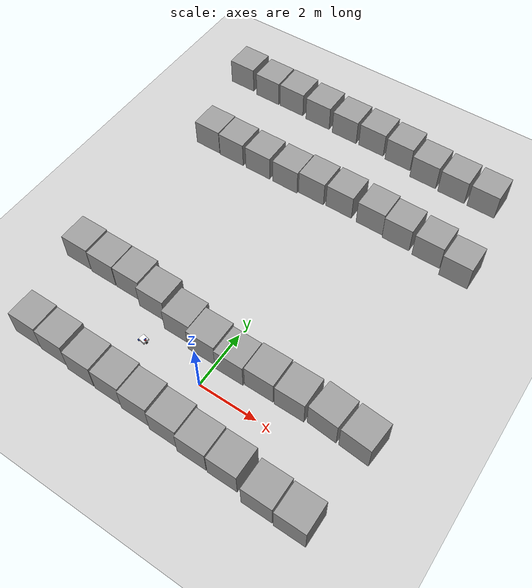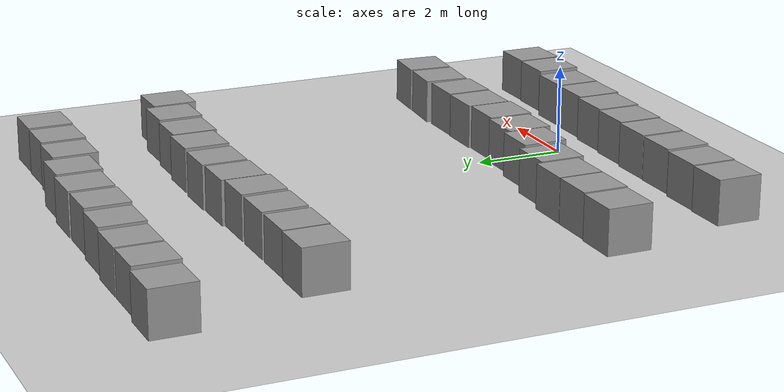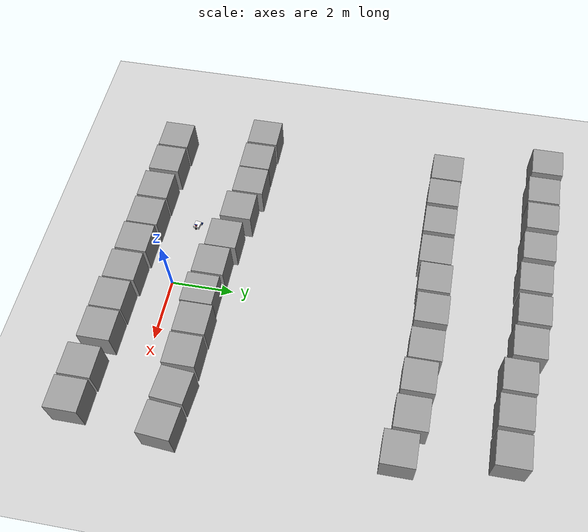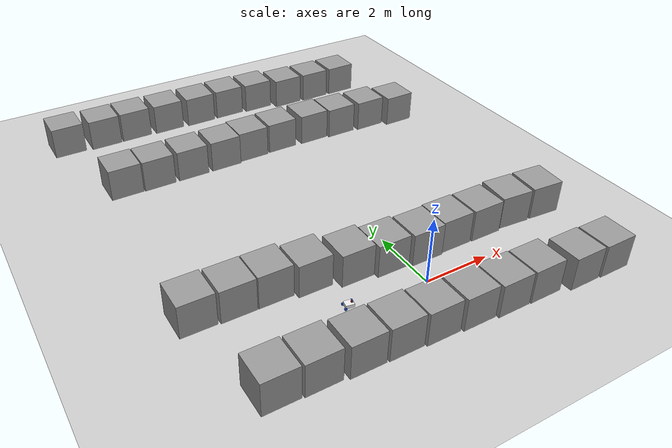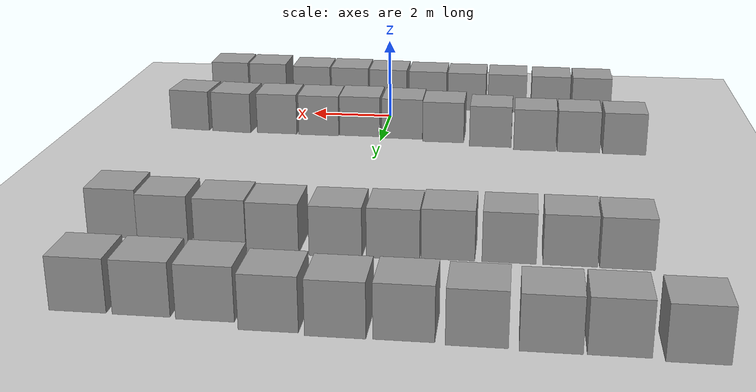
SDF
<sdf version="1.7">
 <world name="default">
  <model name="ground_plane">
   <static>1</static>
   <link name="link">
    <collision name="collision">
     <geometry><plane><normal>0 0 1</normal><size>100 100</size></plane></geometry>
     <surface><friction><ode><mu>100</mu><mu2>50</mu2></ode></friction></surface>
    </collision>
    <visual name="visual">
     <cast_shadows>0</cast_shadows>
     <geometry><plane><normal>0 0 1</normal><size>100 100</size></plane></geometry>
     <material>
      <script><uri>file://media/materials/scripts/gazebo.material</uri><name>Gazebo/Grey</name></script>
     </material>
    </visual>
   </link>
  </model>
  <model name="my_bot">
   <link name="base_link">
    <inertial>
     <pose>0.177215 0 0.060506 0 -0 0</pose>
     <mass>0.79</mass>
     <inertia>
      <ixx>0.00271819</ixx>
      <ixy>0</ixy>
      <ixz>0.000910886</ixz>
      <iyy>0.0116814</iyy>
      <iyz>0</iyz>
      <izz>0.011264</izz>
     </inertia>
    </inertial>
    <collision name="base_link_fixed_joint_lump__chassis_collision">
     <pose>0.12 0 0.05 0 -0 0</pose>
     <geometry><box><size>0.24 0.16 0.1</size></box></geometry>
    </collision>
    <collision name="base_link_fixed_joint_lump__caster_wheel_collision_1">
     <pose>0.24 0 0 0 -0 0</pose>
     <geometry><sphere><radius>0.04</radius></sphere></geometry>
     <surface><friction><ode><mu>0.001</mu><mu2>0.001</mu2></ode></friction></surface>
    </collision>
    <collision name="base_link_fixed_joint_lump__laser_frame_collision_2">
     <pose>0.2 0 0.12 0 -0 0</pose>
     <geometry><cylinder><length>0.04</length><radius>0.033</radius></cylinder></geometry>
    </collision>
    <visual name="base_link_fixed_joint_lump__chassis_visual">
     <pose>0.12 0 0.05 0 -0 0</pose>
     <geometry><box><size>0.24 0.2 0.1</size></box></geometry>
     <material>
      <script><name>Gazebo/White</name><uri>file://media/materials/scripts/gazebo.material</uri></script>
     </material>
    </visual>
    <visual name="base_link_fixed_joint_lump__camera_link_visual_1">
     <pose>0.2 0 0.16 0 -0 0</pose>
     <geometry><box><size>0.025 0.09 0.02</size></box></geometry>
     <material>
      <script><name>Gazebo/Blue</name><uri>file://media/materials/scripts/gazebo.material</uri></script>
     </material>
    </visual>
    <visual name="base_link_fixed_joint_lump__caster_wheel_visual_2">
     <pose>0.24 0 0 0 -0 0</pose>
     <geometry><sphere><radius>0.04</radius></sphere></geometry>
     <material>
      <script><name>Gazebo/Black</name><uri>file://media/materials/scripts/gazebo.material</uri></script>
     </material>
    </visual>
    <visual name="base_link_fixed_joint_lump__laser_frame_visual_3">
     <pose>0.2 0 0.12 0 -0 0</pose>
     <geometry><cylinder><length>0.04</length><radius>0.033</radius></cylinder></geometry>
     <material>
      <script><name>Gazebo/Red</name><uri>file://media/materials/scripts/gazebo.material</uri></script>
     </material>
    </visual>
    <sensor name="camera" type="depth">
     <visualize>1</visualize>
     <update_rate>10</update_rate>
     <camera>
      <horizontal_fov>1.089</horizontal_fov>
      <image><format>B8G8R8</format><width>640</width><height>480</height></image>
      <clip><near>0.05</near><far>8</far></clip>
     </camera>
     <plugin name="camera_controller" filename="libgazebo_ros_camera.so">
      <frame_name>camera_link_optical</frame_name>
      <min_depth>0.1</min_depth>
      <max_depth>100.0</max_depth>
     </plugin>
     <pose>0.2 0 0.16 0 -0 0</pose>
    </sensor>
    <sensor name="laser" type="ray">
     <visualize>1</visualize>
     <update_rate>10</update_rate>
     <ray>
      <scan>
       <horizontal>
        <samples>360</samples>
        <min_angle>-3.14</min_angle>
        <max_angle>3.14</max_angle>
        <resolution>1</resolution>
       </horizontal>
       <vertical><samples>1</samples><min_angle>0</min_angle><max_angle>0</max_angle></vertical>
      </scan>
      <range><min>0.3</min><max>12</max></range>
     </ray>
     <plugin name="laser_controller" filename="libgazebo_ros_ray_sensor.so">
      <ros><argument>~/out:=scan</argument></ros>
      <output_type>sensor_msgs/LaserScan</output_type>
      <frame_name>laser_frame</frame_name>
     </plugin>
     <pose>0.2 0 0.12 0 -0 0</pose>
    </sensor>
   </link>
   <joint name="left_wheel_joint" type="revolute">
    <pose relative_to="base_link">0 0.1 0 -1.5708 0 0</pose>
    <parent>base_link</parent>
    <child>left_wheel</child>
    <axis>
     <xyz>0 0 1</xyz>
     <limit><lower>-1e+16</lower><upper>1e+16</upper></limit>
     <dynamics><spring_reference>0</spring_reference><spring_stiffness>0</spring_stiffness></dynamics>
    </axis>
   </joint>
   <link name="left_wheel">
    <pose relative_to="left_wheel_joint">0 0 0 0 -0 0</pose>
    <inertial>
     <mass>0.1</mass>
     <inertia>
      <ixx>5.33333e-05</ixx>
      <ixy>0</ixy>
      <ixz>0</ixz>
      <iyy>5.33333e-05</iyy>
      <iyz>0</iyz>
      <izz>8e-05</izz>
     </inertia>
    </inertial>
    <collision name="left_wheel_collision"><geometry><sphere><radius>0.04</radius></sphere></geometry></collision>
    <visual name="left_wheel_visual">
     <geometry><cylinder><length>0.04</length><radius>0.04</radius></cylinder></geometry>
     <material>
      <script><name>Gazebo/Blue</name><uri>file://media/materials/scripts/gazebo.material</uri></script>
     </material>
    </visual>
   </link>
   <joint name="right_wheel_joint" type="revolute">
    <pose relative_to="base_link">0 -0.1 0 1.5708 -0 0</pose>
    <parent>base_link</parent>
    <child>right_wheel</child>
    <axis>
     <xyz>0 0 -1</xyz>
     <limit><lower>-1e+16</lower><upper>1e+16</upper></limit>
     <dynamics><spring_reference>0</spring_reference><spring_stiffness>0</spring_stiffness></dynamics>
    </axis>
   </joint>
   <link name="right_wheel">
    <pose relative_to="right_wheel_joint">0 0 0 0 -0 0</pose>
    <inertial>
     <mass>0.1</mass>
     <inertia>
      <ixx>5.33333e-05</ixx>
      <ixy>0</ixy>
      <ixz>0</ixz>
      <iyy>5.33333e-05</iyy>
      <iyz>0</iyz>
      <izz>8e-05</izz>
     </inertia>
    </inertial>
    <collision name="right_wheel_collision">
     <geometry><sphere><radius>0.04</radius></sphere></geometry>
    </collision>
    <visual name="right_wheel_visual">
     <geometry><cylinder><length>0.04</length><radius>0.04</radius></cylinder></geometry>
     <material>
      <script><name>Gazebo/Blue</name><uri>file://media/materials/scripts/gazebo.material</uri></script>
     </material>
    </visual>
   </link>
   <static>0</static>
   <plugin name="gazebo_ros2_control" filename="libgazebo_ros2_control.so">
    <parameters>/home/ivan/dev_ws/install/my_bot/share/my_bot/config/my_controllers.yaml</parameters>
   </plugin>
   <pose>-2.37462 0.266413 0.039999 -1.4e-05 -6e-06 -0.175538</pose>
  </model>
  <model name="unit_box">
   <pose>0.555507 1.19168 0.499995 0 1e-05 0</pose>
   <link name="link">
    <inertial>
     <mass>1</mass>
     <inertia>
      <ixx>0.166667</ixx>
      <ixy>0</ixy>
      <ixz>0</ixz>
      <iyy>0.166667</iyy>
      <iyz>0</iyz>
      <izz>0.166667</izz>
     </inertia>
    </inertial>
    <collision name="collision"><geometry><box><size>1 1 1</size></box></geometry></collision>
    <visual name="visual">
     <geometry><box><size>1 1 1</size></box></geometry>
     <material>
      <script><name>Gazebo/Grey</name><uri>file://media/materials/scripts/gazebo.material</uri></script>
     </material>
    </visual>
   </link>
  </model>
  <model name="unit_box_0">
   <pose>1.57825 1.23788 0.499995 0 -1e-05 0</pose>
   <link name="link">
    <inertial>
     <mass>1</mass>
     <inertia>
      <ixx>0.166667</ixx>
      <ixy>0</ixy>
      <ixz>0</ixz>
      <iyy>0.166667</iyy>
      <iyz>0</iyz>
      <izz>0.166667</izz>
     </inertia>
    </inertial>
    <collision name="collision"><geometry><box><size>1 1 1</size></box></geometry></collision>
    <visual name="visual">
     <geometry><box><size>1 1 1</size></box></geometry>
     <material>
      <script><name>Gazebo/Grey</name><uri>file://media/materials/scripts/gazebo.material</uri></script>
     </material>
    </visual>
   </link>
  </model>
  <model name="unit_box_1">
   <pose>2.63146 1.21638 0.499995 0 1e-05 0</pose>
   <link name="link">
    <inertial>
     <mass>1</mass>
     <inertia>
      <ixx>0.166667</ixx>
      <ixy>0</ixy>
      <ixz>0</ixz>
      <iyy>0.166667</iyy>
      <iyz>0</iyz>
      <izz>0.166667</izz>
     </inertia>
    </inertial>
    <collision name="collision"><geometry><box><size>1 1 1</size></box></geometry></collision>
    <visual name="visual">
     <geometry><box><size>1 1 1</size></box></geometry>
     <material>
      <script><name>Gazebo/Grey</name><uri>file://media/materials/scripts/gazebo.material</uri></script>
     </material>
    </visual>
   </link>
  </model>
  <model name="unit_box_2">
   <pose>3.74606 1.22705 0.499995 -1e-05 -0 -0.082022</pose>
   <link name="link">
    <inertial>
     <mass>1</mass>
     <inertia>
      <ixx>0.166667</ixx>
      <ixy>0</ixy>
      <ixz>0</ixz>
      <iyy>0.166667</iyy>
      <iyz>0</iyz>
      <izz>0.166667</izz>
     </inertia>
    </inertial>
    <collision name="collision"><geometry><box><size>1 1 1</size></box></geometry></collision>
    <visual name="visual">
     <geometry><box><size>1 1 1</size></box></geometry>
     <material>
      <script><name>Gazebo/Grey</name><uri>file://media/materials/scripts/gazebo.material</uri></script>
     </material>
    </visual>
   </link>
  </model>
  <model name="unit_box_3">
   <pose>4.82643 1.14872 0.499995 -1e-05 0 -0.080673</pose>
   <link name="link">
    <inertial>
     <mass>1</mass>
     <inertia>
      <ixx>0.166667</ixx>
      <ixy>0</ixy>
      <ixz>0</ixz>
      <iyy>0.166667</iyy>
      <iyz>0</iyz>
      <izz>0.166667</izz>
     </inertia>
    </inertial>
    <collision name="collision"><geometry><box><size>1 1 1</size></box></geometry></collision>
    <visual name="visual">
     <geometry><box><size>1 1 1</size></box></geometry>
     <material>
      <script><name>Gazebo/Grey</name><uri>file://media/materials/scripts/gazebo.material</uri></script>
     </material>
    </visual>
   </link>
  </model>
  <model name="unit_box_12">
   <pose>4.52806 -1.6504 0.499995 -1e-05 0 0</pose>
   <link name="link">
    <inertial>
     <mass>1</mass>
     <inertia>
      <ixx>0.166667</ixx>
      <ixy>0</ixy>
      <ixz>0</ixz>
      <iyy>0.166667</iyy>
      <iyz>0</iyz>
      <izz>0.166667</izz>
     </inertia>
    </inertial>
    <collision name="collision"><geometry><box><size>1 1 1</size></box></geometry></collision>
    <visual name="visual">
     <geometry><box><size>1 1 1</size></box></geometry>
     <material>
      <script><name>Gazebo/Grey</name><uri>file://media/materials/scripts/gazebo.material</uri></script>
     </material>
    </visual>
   </link>
  </model>
  <model name="unit_box_13">
   <pose>3.47624 -1.6198 0.499995 0 1e-05 0</pose>
   <link name="link">
    <inertial>
     <mass>1</mass>
     <inertia>
      <ixx>0.166667</ixx>
      <ixy>0</ixy>
      <ixz>0</ixz>
      <iyy>0.166667</iyy>
      <iyz>0</iyz>
      <izz>0.166667</izz>
     </inertia>
    </inertial>
    <collision name="collision"><geometry><box><size>1 1 1</size></box></geometry></collision>
    <visual name="visual">
     <geometry><box><size>1 1 1</size></box></geometry>
     <material>
      <script><name>Gazebo/Grey</name><uri>file://media/materials/scripts/gazebo.material</uri></script>
     </material>
    </visual>
   </link>
  </model>
  <model name="unit_box_14">
   <pose>2.2423 -1.45852 0.499995 0 -1e-05 0</pose>
   <link name="link">
    <inertial>
     <mass>1</mass>
     <inertia>
      <ixx>0.166667</ixx>
      <ixy>0</ixy>
      <ixz>0</ixz>
      <iyy>0.166667</iyy>
      <iyz>0</iyz>
      <izz>0.166667</izz>
     </inertia>
    </inertial>
    <collision name="collision"><geometry><box><size>1 1 1</size></box></geometry></collision>
    <visual name="visual">
     <geometry><box><size>1 1 1</size></box></geometry>
     <material>
      <script><name>Gazebo/Grey</name><uri>file://media/materials/scripts/gazebo.material</uri></script>
     </material>
    </visual>
   </link>
  </model>
  <model name="unit_box_15">
   <pose>1.19901 -1.44068 0.5 -0 -0 -0</pose>
   <link name="link">
    <inertial>
     <mass>1</mass>
     <inertia>
      <ixx>0.166667</ixx>
      <ixy>0</ixy>
      <ixz>0</ixz>
      <iyy>0.166667</iyy>
      <iyz>0</iyz>
      <izz>0.166667</izz>
     </inertia>
    </inertial>
    <collision name="collision"><geometry><box><size>1 1 1</size></box></geometry></collision>
    <visual name="visual">
     <geometry><box><size>1 1 1</size></box></geometry>
     <material>
      <script><name>Gazebo/Grey</name><uri>file://media/materials/scripts/gazebo.material</uri></script>
     </material>
    </visual>
   </link>
  </model>
  <model name="unit_box_55">
   <pose>3.95809 10.893 0.499995 -1e-05 0 0</pose>
   <link name="link">
    <inertial>
     <mass>1</mass>
     <inertia>
      <ixx>0.166667</ixx>
      <ixy>0</ixy>
      <ixz>0</ixz>
      <iyy>0.166667</iyy>
      <iyz>0</iyz>
      <izz>0.166667</izz>
     </inertia>
    </inertial>
    <collision name="collision"><geometry><box><size>1 1 1</size></box></geometry></collision>
    <visual name="visual">
     <geometry><box><size>1 1 1</size></box></geometry>
     <material>
      <script><name>Gazebo/Grey</name><uri>file://media/materials/scripts/gazebo.material</uri></script>
     </material>
    </visual>
   </link>
  </model>
  <model name="unit_box_59">
   <pose>4.46278 7.82964 0.499995 0 1e-05 0</pose>
   <link name="link">
    <inertial>
     <mass>1</mass>
     <inertia>
      <ixx>0.166667</ixx>
      <ixy>0</ixy>
      <ixz>0</ixz>
      <iyy>0.166667</iyy>
      <iyz>0</iyz>
      <izz>0.166667</izz>
     </inertia>
    </inertial>
    <collision name="collision"><geometry><box><size>1 1 1</size></box></geometry></collision>
    <visual name="visual">
     <geometry><box><size>1 1 1</size></box></geometry>
     <material>
      <script><name>Gazebo/Grey</name><uri>file://media/materials/scripts/gazebo.material</uri></script>
     </material>
    </visual>
   </link>
  </model>
  <model name="unit_box_60">
   <pose>2.84719 10.9112 0.499995 -1e-05 0 0</pose>
   <link name="link">
    <inertial>
     <mass>1</mass>
     <inertia>
      <ixx>0.166667</ixx>
      <ixy>0</ixy>
      <ixz>0</ixz>
      <iyy>0.166667</iyy>
      <iyz>0</iyz>
      <izz>0.166667</izz>
     </inertia>
    </inertial>
    <collision name="collision"><geometry><box><size>1 1 1</size></box></geometry></collision>
    <visual name="visual">
     <geometry><box><size>1 1 1</size></box></geometry>
     <material>
      <script><name>Gazebo/Grey</name><uri>file://media/materials/scripts/gazebo.material</uri></script>
     </material>
    </visual>
   </link>
  </model>
  <model name="unit_box_61">
   <pose>1.73992 10.9582 0.499995 0 1e-05 0</pose>
   <link name="link">
    <inertial>
     <mass>1</mass>
     <inertia>
      <ixx>0.166667</ixx>
      <ixy>0</ixy>
      <ixz>0</ixz>
      <iyy>0.166667</iyy>
      <iyz>0</iyz>
      <izz>0.166667</izz>
     </inertia>
    </inertial>
    <collision name="collision"><geometry><box><size>1 1 1</size></box></geometry></collision>
    <visual name="visual">
     <geometry><box><size>1 1 1</size></box></geometry>
     <material>
      <script><name>Gazebo/Grey</name><uri>file://media/materials/scripts/gazebo.material</uri></script>
     </material>
    </visual>
   </link>
  </model>
  <model name="unit_box_62">
   <pose>0.619512 11.197 0.499995 -1e-05 -0 0</pose>
   <link name="link">
    <inertial>
     <mass>1</mass>
     <inertia>
      <ixx>0.166667</ixx>
      <ixy>0</ixy>
      <ixz>0</ixz>
      <iyy>0.166667</iyy>
      <iyz>0</iyz>
      <izz>0.166667</izz>
     </inertia>
    </inertial>
    <collision name="collision"><geometry><box><size>1 1 1</size></box></geometry></collision>
    <visual name="visual">
     <geometry><box><size>1 1 1</size></box></geometry>
     <material>
      <script><name>Gazebo/Grey</name><uri>file://media/materials/scripts/gazebo.material</uri></script>
     </material>
    </visual>
   </link>
  </model>
  <model name="unit_box_63">
   <pose>3.38354 8.04833 0.499995 0 1e-05 0</pose>
   <link name="link">
    <inertial>
     <mass>1</mass>
     <inertia>
      <ixx>0.166667</ixx>
      <ixy>0</ixy>
      <ixz>0</ixz>
      <iyy>0.166667</iyy>
      <iyz>0</iyz>
      <izz>0.166667</izz>
     </inertia>
    </inertial>
    <collision name="collision"><geometry><box><size>1 1 1</size></box></geometry></collision>
    <visual name="visual">
     <geometry><box><size>1 1 1</size></box></geometry>
     <material>
      <script><name>Gazebo/Grey</name><uri>file://media/materials/scripts/gazebo.material</uri></script>
     </material>
    </visual>
   </link>
  </model>
  <model name="unit_box_64">
   <pose>2.24413 8.11599 0.499995 -1e-05 0 0</pose>
   <link name="link">
    <inertial>
     <mass>1</mass>
     <inertia>
      <ixx>0.166667</ixx>
      <ixy>0</ixy>
      <ixz>0</ixz>
      <iyy>0.166667</iyy>
      <iyz>0</iyz>
      <izz>0.166667</izz>
     </inertia>
    </inertial>
    <collision name="collision"><geometry><box><size>1 1 1</size></box></geometry></collision>
    <visual name="visual">
     <geometry><box><size>1 1 1</size></box></geometry>
     <material>
      <script><name>Gazebo/Grey</name><uri>file://media/materials/scripts/gazebo.material</uri></script>
     </material>
    </visual>
   </link>
  </model>
  <model name="unit_box_65">
   <pose>1.20797 8.19953 0.499995 0 1e-05 0</pose>
   <link name="link">
    <inertial>
     <mass>1</mass>
     <inertia>
      <ixx>0.166667</ixx>
      <ixy>0</ixy>
      <ixz>0</ixz>
      <iyy>0.166667</iyy>
      <iyz>0</iyz>
      <izz>0.166667</izz>
     </inertia>
    </inertial>
    <collision name="collision"><geometry><box><size>1 1 1</size></box></geometry></collision>
    <visual name="visual">
     <geometry><box><size>1 1 1</size></box></geometry>
     <material>
      <script><name>Gazebo/Grey</name><uri>file://media/materials/scripts/gazebo.material</uri></script>
     </material>
    </visual>
   </link>
  </model>
  <model name="unit_box_66">
   <pose>-0.495272 11.2728 0.499995 1e-05 -0 0</pose>
   <link name="link">
    <inertial>
     <mass>1</mass>
     <inertia>
      <ixx>0.166667</ixx>
      <ixy>0</ixy>
      <ixz>0</ixz>
      <iyy>0.166667</iyy>
      <iyz>0</iyz>
      <izz>0.166667</izz>
     </inertia>
    </inertial>
    <collision name="collision"><geometry><box><size>1 1 1</size></box></geometry></collision>
    <visual name="visual">
     <geometry><box><size>1 1 1</size></box></geometry>
     <material>
      <script><name>Gazebo/Grey</name><uri>file://media/materials/scripts/gazebo.material</uri></script>
     </material>
    </visual>
   </link>
  </model>
  <model name="unit_box_67">
   <pose>0.003792 8.23484 0.499995 -1e-05 0 0</pose>
   <link name="link">
    <inertial>
     <mass>1</mass>
     <inertia>
      <ixx>0.166667</ixx>
      <ixy>0</ixy>
      <ixz>0</ixz>
      <iyy>0.166667</iyy>
      <iyz>0</iyz>
      <izz>0.166667</izz>
     </inertia>
    </inertial>
    <collision name="collision"><geometry><box><size>1 1 1</size></box></geometry></collision>
    <visual name="visual">
     <geometry><box><size>1 1 1</size></box></geometry>
     <material>
      <script><name>Gazebo/Grey</name><uri>file://media/materials/scripts/gazebo.material</uri></script>
     </material>
    </visual>
   </link>
  </model>
  <model name="unit_box_68">
   <pose>-1.60407 11.2656 0.499995 -1e-05 0 0</pose>
   <link name="link">
    <inertial>
     <mass>1</mass>
     <inertia>
      <ixx>0.166667</ixx>
      <ixy>0</ixy>
      <ixz>0</ixz>
      <iyy>0.166667</iyy>
      <iyz>0</iyz>
      <izz>0.166667</izz>
     </inertia>
    </inertial>
    <collision name="collision"><geometry><box><size>1 1 1</size></box></geometry></collision>
    <visual name="visual">
     <geometry><box><size>1 1 1</size></box></geometry>
     <material>
      <script><name>Gazebo/Grey</name><uri>file://media/materials/scripts/gazebo.material</uri></script>
     </material>
    </visual>
   </link>
  </model>
  <model name="unit_box_69">
   <pose>-1.07686 8.20701 0.499995 0 1e-05 0</pose>
   <link name="link">
    <inertial>
     <mass>1</mass>
     <inertia>
      <ixx>0.166667</ixx>
      <ixy>0</ixy>
      <ixz>0</ixz>
      <iyy>0.166667</iyy>
      <iyz>0</iyz>
      <izz>0.166667</izz>
     </inertia>
    </inertial>
    <collision name="collision"><geometry><box><size>1 1 1</size></box></geometry></collision>
    <visual name="visual">
     <geometry><box><size>1 1 1</size></box></geometry>
     <material>
      <script><name>Gazebo/Grey</name><uri>file://media/materials/scripts/gazebo.material</uri></script>
     </material>
    </visual>
   </link>
  </model>
  <model name="unit_box_70">
   <pose>-2.77324 11.3221 0.499995 -1e-05 0 0</pose>
   <link name="link">
    <inertial>
     <mass>1</mass>
     <inertia>
      <ixx>0.166667</ixx>
      <ixy>0</ixy>
      <ixz>0</ixz>
      <iyy>0.166667</iyy>
      <iyz>0</iyz>
      <izz>0.166667</izz>
     </inertia>
    </inertial>
    <collision name="collision"><geometry><box><size>1 1 1</size></box></geometry></collision>
    <visual name="visual">
     <geometry><box><size>1 1 1</size></box></geometry>
     <material>
      <script><name>Gazebo/Grey</name><uri>file://media/materials/scripts/gazebo.material</uri></script>
     </material>
    </visual>
   </link>
  </model>
  <model name="unit_box_71">
   <pose>-2.09643 8.13987 0.499995 0 1e-05 0</pose>
   <link name="link">
    <inertial>
     <mass>1</mass>
     <inertia>
      <ixx>0.166667</ixx>
      <ixy>0</ixy>
      <ixz>0</ixz>
      <iyy>0.166667</iyy>
      <iyz>0</iyz>
      <izz>0.166667</izz>
     </inertia>
    </inertial>
    <collision name="collision"><geometry><box><size>1 1 1</size></box></geometry></collision>
    <visual name="visual">
     <geometry><box><size>1 1 1</size></box></geometry>
     <material>
      <script><name>Gazebo/Grey</name><uri>file://media/materials/scripts/gazebo.material</uri></script>
     </material>
    </visual>
   </link>
  </model>
  <model name="unit_box_72">
   <pose>-3.9399 11.375 0.499995 -1e-05 0 0</pose>
   <link name="link">
    <inertial>
     <mass>1</mass>
     <inertia>
      <ixx>0.166667</ixx>
      <ixy>0</ixy>
      <ixz>0</ixz>
      <iyy>0.166667</iyy>
      <iyz>0</iyz>
      <izz>0.166667</izz>
     </inertia>
    </inertial>
    <collision name="collision"><geometry><box><size>1 1 1</size></box></geometry></collision>
    <visual name="visual">
     <geometry><box><size>1 1 1</size></box></geometry>
     <material>
      <script><name>Gazebo/Grey</name><uri>file://media/materials/scripts/gazebo.material</uri></script>
     </material>
    </visual>
   </link>
  </model>
  <model name="unit_box_73">
   <pose>-3.22691 8.14265 0.499995 0 1e-05 0</pose>
   <link name="link">
    <inertial>
     <mass>1</mass>
     <inertia>
      <ixx>0.166667</ixx>
      <ixy>0</ixy>
      <ixz>0</ixz>
      <iyy>0.166667</iyy>
      <iyz>0</iyz>
      <izz>0.166667</izz>
     </inertia>
    </inertial>
    <collision name="collision"><geometry><box><size>1 1 1</size></box></geometry></collision>
    <visual name="visual">
     <geometry><box><size>1 1 1</size></box></geometry>
     <material>
      <script><name>Gazebo/Grey</name><uri>file://media/materials/scripts/gazebo.material</uri></script>
     </material>
    </visual>
   </link>
  </model>
  <model name="unit_box_74">
   <pose>-5.00002 11.3706 0.499995 -1e-05 0 0</pose>
   <link name="link">
    <inertial>
     <mass>1</mass>
     <inertia>
      <ixx>0.166667</ixx>
      <ixy>0</ixy>
      <ixz>0</ixz>
      <iyy>0.166667</iyy>
      <iyz>0</iyz>
      <izz>0.166667</izz>
     </inertia>
    </inertial>
    <collision name="collision"><geometry><box><size>1 1 1</size></box></geometry></collision>
    <visual name="visual">
     <geometry><box><size>1 1 1</size></box></geometry>
     <material>
      <script><name>Gazebo/Grey</name><uri>file://media/materials/scripts/gazebo.material</uri></script>
     </material>
    </visual>
   </link>
  </model>
  <model name="unit_box_75">
   <pose>-6.19269 11.4491 0.499995 0 1e-05 0</pose>
   <link name="link">
    <inertial>
     <mass>1</mass>
     <inertia>
      <ixx>0.166667</ixx>
      <ixy>0</ixy>
      <ixz>0</ixz>
      <iyy>0.166667</iyy>
      <iyz>0</iyz>
      <izz>0.166667</izz>
     </inertia>
    </inertial>
    <collision name="collision"><geometry><box><size>1 1 1</size></box></geometry></collision>
    <visual name="visual">
     <geometry><box><size>1 1 1</size></box></geometry>
     <material>
      <script><name>Gazebo/Grey</name><uri>file://media/materials/scripts/gazebo.material</uri></script>
     </material>
    </visual>
   </link>
  </model>
  <model name="unit_box_80">
   <pose>-4.3458 8.14363 0.499995 -1e-05 0 0</pose>
   <link name="link">
    <inertial>
     <mass>1</mass>
     <inertia>
      <ixx>0.166667</ixx>
      <ixy>0</ixy>
      <ixz>0</ixz>
      <iyy>0.166667</iyy>
      <iyz>0</iyz>
      <izz>0.166667</izz>
     </inertia>
    </inertial>
    <collision name="collision"><geometry><box><size>1 1 1</size></box></geometry></collision>
    <visual name="visual">
     <geometry><box><size>1 1 1</size></box></geometry>
     <material>
      <script><name>Gazebo/Grey</name><uri>file://media/materials/scripts/gazebo.material</uri></script>
     </material>
    </visual>
   </link>
  </model>
  <model name="unit_box_81">
   <pose>-5.37999 8.16639 0.499995 -1e-05 0 0</pose>
   <link name="link">
    <inertial>
     <mass>1</mass>
     <inertia>
      <ixx>0.166667</ixx>
      <ixy>0</ixy>
      <ixz>0</ixz>
      <iyy>0.166667</iyy>
      <iyz>0</iyz>
      <izz>0.166667</izz>
     </inertia>
    </inertial>
    <collision name="collision"><geometry><box><size>1 1 1</size></box></geometry></collision>
    <visual name="visual">
     <geometry><box><size>1 1 1</size></box></geometry>
     <material>
      <script><name>Gazebo/Grey</name><uri>file://media/materials/scripts/gazebo.material</uri></script>
     </material>
    </visual>
   </link>
  </model>
  <model name="unit_box_121">
   <pose>-5.81978 1.82803 0.499995 0 1e-05 0</pose>
   <link name="link">
    <inertial>
     <mass>1</mass>
     <inertia>
      <ixx>0.166667</ixx>
      <ixy>0</ixy>
      <ixz>0</ixz>
      <iyy>0.166667</iyy>
      <iyz>0</iyz>
      <izz>0.166667</izz>
     </inertia>
    </inertial>
    <collision name="collision"><geometry><box><size>1 1 1</size></box></geometry></collision>
    <visual name="visual">
     <geometry><box><size>1 1 1</size></box></geometry>
     <material>
      <script><name>Gazebo/Grey</name><uri>file://media/materials/scripts/gazebo.material</uri></script>
     </material>
    </visual>
   </link>
  </model>
  <model name="unit_box_122">
   <pose>-4.75596 1.7931 0.499995 0 1e-05 0</pose>
   <link name="link">
    <inertial>
     <mass>1</mass>
     <inertia>
      <ixx>0.166667</ixx>
      <ixy>0</ixy>
      <ixz>0</ixz>
      <iyy>0.166667</iyy>
      <iyz>0</iyz>
      <izz>0.166667</izz>
     </inertia>
    </inertial>
    <collision name="collision"><geometry><box><size>1 1 1</size></box></geometry></collision>
    <visual name="visual">
     <geometry><box><size>1 1 1</size></box></geometry>
     <material>
      <script><name>Gazebo/Grey</name><uri>file://media/materials/scripts/gazebo.material</uri></script>
     </material>
    </visual>
   </link>
  </model>
  <model name="unit_box_123">
   <pose>-3.72552 1.78985 0.499995 0 1e-05 0</pose>
   <link name="link">
    <inertial>
     <mass>1</mass>
     <inertia>
      <ixx>0.166667</ixx>
      <ixy>0</ixy>
      <ixz>0</ixz>
      <iyy>0.166667</iyy>
      <iyz>0</iyz>
      <izz>0.166667</izz>
     </inertia>
    </inertial>
    <collision name="collision"><geometry><box><size>1 1 1</size></box></geometry></collision>
    <visual name="visual">
     <geometry><box><size>1 1 1</size></box></geometry>
     <material>
      <script><name>Gazebo/Grey</name><uri>file://media/materials/scripts/gazebo.material</uri></script>
     </material>
    </visual>
   </link>
  </model>
  <model name="unit_box_124">
   <pose>-2.66754 1.63848 0.499995 0 1e-05 0</pose>
   <link name="link">
    <inertial>
     <mass>1</mass>
     <inertia>
      <ixx>0.166667</ixx>
      <ixy>0</ixy>
      <ixz>0</ixz>
      <iyy>0.166667</iyy>
      <iyz>0</iyz>
      <izz>0.166667</izz>
     </inertia>
    </inertial>
    <collision name="collision"><geometry><box><size>1 1 1</size></box></geometry></collision>
    <visual name="visual">
     <geometry><box><size>1 1 1</size></box></geometry>
     <material>
      <script><name>Gazebo/Grey</name><uri>file://media/materials/scripts/gazebo.material</uri></script>
     </material>
    </visual>
   </link>
  </model>
  <model name="unit_box_125">
   <pose>-1.51822 1.42433 0.499995 -1e-05 -0 -0</pose>
   <link name="link">
    <inertial>
     <mass>1</mass>
     <inertia>
      <ixx>0.166667</ixx>
      <ixy>0</ixy>
      <ixz>0</ixz>
      <iyy>0.166667</iyy>
      <iyz>0</iyz>
      <izz>0.166667</izz>
     </inertia>
    </inertial>
    <collision name="collision"><geometry><box><size>1 1 1</size></box></geometry></collision>
    <visual name="visual">
     <geometry><box><size>1 1 1</size></box></geometry>
     <material>
      <script><name>Gazebo/Grey</name><uri>file://media/materials/scripts/gazebo.material</uri></script>
     </material>
    </visual>
   </link>
  </model>
  <model name="unit_box_126">
   <pose>-0.500907 1.27134 0.499995 0 -1e-05 0</pose>
   <link name="link">
    <inertial>
     <mass>1</mass>
     <inertia>
      <ixx>0.166667</ixx>
      <ixy>0</ixy>
      <ixz>0</ixz>
      <iyy>0.166667</iyy>
      <iyz>0</iyz>
      <izz>0.166667</izz>
     </inertia>
    </inertial>
    <collision name="collision"><geometry><box><size>1 1 1</size></box></geometry></collision>
    <visual name="visual">
     <geometry><box><size>1 1 1</size></box></geometry>
     <material>
      <script><name>Gazebo/Grey</name><uri>file://media/materials/scripts/gazebo.material</uri></script>
     </material>
    </visual>
   </link>
  </model>
  <model name="unit_box_127">
   <pose>0.15774 -1.36253 0.499995 0 1e-05 0</pose>
   <link name="link">
    <inertial>
     <mass>1</mass>
     <inertia>
      <ixx>0.166667</ixx>
      <ixy>0</ixy>
      <ixz>0</ixz>
      <iyy>0.166667</iyy>
      <iyz>0</iyz>
      <izz>0.166667</izz>
     </inertia>
    </inertial>
    <collision name="collision"><geometry><box><size>1 1 1</size></box></geometry></collision>
    <visual name="visual">
     <geometry><box><size>1 1 1</size></box></geometry>
     <material>
      <script><name>Gazebo/Grey</name><uri>file://media/materials/scripts/gazebo.material</uri></script>
     </material>
    </visual>
   </link>
  </model>
  <model name="unit_box_128">
   <pose>-0.90612 -1.30563 0.499995 0 -1e-05 0</pose>
   <link name="link">
    <inertial>
     <mass>1</mass>
     <inertia>
      <ixx>0.166667</ixx>
      <ixy>0</ixy>
      <ixz>0</ixz>
      <iyy>0.166667</iyy>
      <iyz>0</iyz>
      <izz>0.166667</izz>
     </inertia>
    </inertial>
    <collision name="collision"><geometry><box><size>1 1 1</size></box></geometry></collision>
    <visual name="visual">
     <geometry><box><size>1 1 1</size></box></geometry>
     <material>
      <script><name>Gazebo/Grey</name><uri>file://media/materials/scripts/gazebo.material</uri></script>
     </material>
    </visual>
   </link>
  </model>
  <model name="unit_box_129">
   <pose>-1.94608 -1.25155 0.499995 -1e-05 0 0</pose>
   <link name="link">
    <inertial>
     <mass>1</mass>
     <inertia>
      <ixx>0.166667</ixx>
      <ixy>0</ixy>
      <ixz>0</ixz>
      <iyy>0.166667</iyy>
      <iyz>0</iyz>
      <izz>0.166667</izz>
     </inertia>
    </inertial>
    <collision name="collision"><geometry><box><size>1 1 1</size></box></geometry></collision>
    <visual name="visual">
     <geometry><box><size>1 1 1</size></box></geometry>
     <material>
      <script><name>Gazebo/Grey</name><uri>file://media/materials/scripts/gazebo.material</uri></script>
     </material>
    </visual>
   </link>
  </model>
  <model name="unit_box_130">
   <pose>-3.00827 -1.23218 0.499995 0 1e-05 0</pose>
   <link name="link">
    <inertial>
     <mass>1</mass>
     <inertia>
      <ixx>0.166667</ixx>
      <ixy>0</ixy>
      <ixz>0</ixz>
      <iyy>0.166667</iyy>
      <iyz>0</iyz>
      <izz>0.166667</izz>
     </inertia>
    </inertial>
    <collision name="collision"><geometry><box><size>1 1 1</size></box></geometry></collision>
    <visual name="visual">
     <geometry><box><size>1 1 1</size></box></geometry>
     <material>
      <script><name>Gazebo/Grey</name><uri>file://media/materials/scripts/gazebo.material</uri></script>
     </material>
    </visual>
   </link>
  </model>
  <model name="unit_box_131">
   <pose>-4.13807 -1.16413 0.499995 0 1e-05 0</pose>
   <link name="link">
    <inertial>
     <mass>1</mass>
     <inertia>
      <ixx>0.166667</ixx>
      <ixy>0</ixy>
      <ixz>0</ixz>
      <iyy>0.166667</iyy>
      <iyz>0</iyz>
      <izz>0.166667</izz>
     </inertia>
    </inertial>
    <collision name="collision"><geometry><box><size>1 1 1</size></box></geometry></collision>
    <visual name="visual">
     <geometry><box><size>1 1 1</size></box></geometry>
     <material>
      <script><name>Gazebo/Grey</name><uri>file://media/materials/scripts/gazebo.material</uri></script>
     </material>
    </visual>
   </link>
  </model>
  <model name="unit_box_132">
   <pose>-5.19182 -1.13485 0.499995 0 -1e-05 0</pose>
   <link name="link">
    <inertial>
     <mass>1</mass>
     <inertia>
      <ixx>0.166667</ixx>
      <ixy>0</ixy>
      <ixz>0</ixz>
      <iyy>0.166667</iyy>
      <iyz>0</iyz>
      <izz>0.166667</izz>
     </inertia>
    </inertial>
    <collision name="collision"><geometry><box><size>1 1 1</size></box></geometry></collision>
    <visual name="visual">
     <geometry><box><size>1 1 1</size></box></geometry>
     <material>
      <script><name>Gazebo/Grey</name><uri>file://media/materials/scripts/gazebo.material</uri></script>
     </material>
    </visual>
   </link>
  </model>
 </world>
</sdf>
